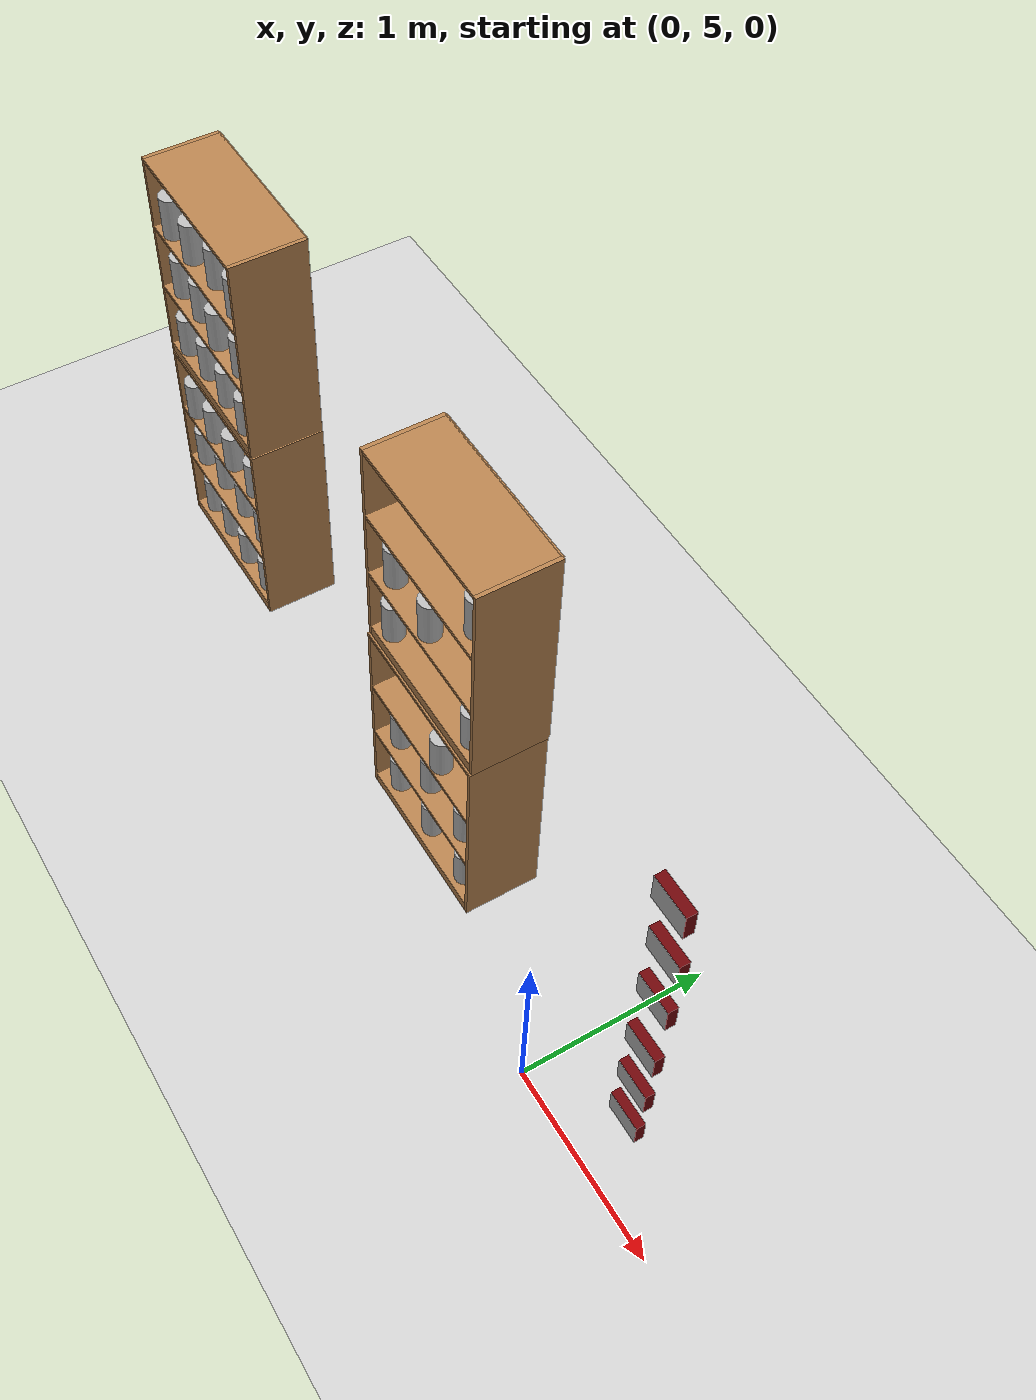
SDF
<sdf version="1.7">
 <world name="default">
  <model name="ground_plane">
   <static>1</static>
   <link name="link">
    <collision name="collision">
     <geometry><plane><normal>0 0 1</normal><size>100 100</size></plane></geometry>
     <surface><friction><ode><mu>100</mu><mu2>50</mu2></ode></friction></surface>
    </collision>
    <visual name="visual">
     <cast_shadows>0</cast_shadows>
     <geometry><plane><normal>0 0 1</normal><size>100 100</size></plane></geometry>
     <material>
      <script><uri>file://media/materials/scripts/gazebo.material</uri><name>Gazebo/Grey</name></script>
     </material>
    </visual>
   </link>
  </model>
  <model name="bookshelf_2_clone">
   <static>1</static>
   <link name="link">
    <inertial><mass>1</mass></inertial>
    <collision name="back">
     <pose>0 0.005 0.6 0 -0 0</pose>
     <geometry><box><size>0.9 0.01 1.2</size></box></geometry>
    </collision>
    <visual name="visual1">
     <pose>0 0.005 0.6 0 -0 0</pose>
     <geometry><box><size>0.9 0.01 1.2</size></box></geometry>
     <material>
      <script><uri>file://media/materials/scripts/gazebo.material</uri><name>Gazebo/Wood</name></script>
     </material>
    </visual>
    <collision name="left_side">
     <pose>0.45 -0.195 0.6 0 -0 0</pose>
     <geometry><box><size>0.02 0.4 1.2</size></box></geometry>
    </collision>
    <visual name="visual2">
     <pose>0.45 -0.195 0.6 0 -0 0</pose>
     <geometry><box><size>0.02 0.4 1.2</size></box></geometry>
     <material>
      <script><uri>file://media/materials/scripts/gazebo.material</uri><name>Gazebo/Wood</name></script>
     </material>
    </visual>
    <collision name="right_side">
     <pose>-0.45 -0.195 0.6 0 -0 0</pose>
     <geometry><box><size>0.02 0.4 1.2</size></box></geometry>
    </collision>
    <visual name="visual3">
     <pose>-0.45 -0.195 0.6 0 -0 0</pose>
     <geometry><box><size>0.02 0.4 1.2</size></box></geometry>
     <material>
      <script><uri>file://media/materials/scripts/gazebo.material</uri><name>Gazebo/Wood</name></script>
     </material>
    </visual>
    <collision name="bottom">
     <pose>0 -0.195 0.03 0 -0 0</pose>
     <geometry><box><size>0.88 0.4 0.06</size></box></geometry>
    </collision>
    <visual name="visual4">
     <pose>0 -0.195 0.03 0 -0 0</pose>
     <geometry><box><size>0.88 0.4 0.06</size></box></geometry>
     <material>
      <script><uri>file://media/materials/scripts/gazebo.material</uri><name>Gazebo/Wood</name></script>
     </material>
    </visual>
    <collision name="top">
     <pose>0 -0.195 1.19 0 -0 0</pose>
     <geometry><box><size>0.88 0.4 0.02</size></box></geometry>
    </collision>
    <visual name="visual5">
     <pose>0 -0.195 1.19 0 -0 0</pose>
     <geometry><box><size>0.88 0.4 0.02</size></box></geometry>
     <material>
      <script><uri>file://media/materials/scripts/gazebo.material</uri><name>Gazebo/Wood</name></script>
     </material>
    </visual>
    <collision name="low_shelf">
     <pose>0 -0.195 0.43 0 -0 0</pose>
     <geometry><box><size>0.88 0.4 0.02</size></box></geometry>
    </collision>
    <visual name="visual6">
     <pose>0 -0.195 0.43 0 -0 0</pose>
     <geometry><box><size>0.88 0.4 0.02</size></box></geometry>
     <material>
      <script><uri>file://media/materials/scripts/gazebo.material</uri><name>Gazebo/Wood</name></script>
     </material>
    </visual>
    <collision name="high_shelf">
     <pose>0 -0.195 0.8 0 -0 0</pose>
     <geometry><box><size>0.88 0.4 0.02</size></box></geometry>
    </collision>
    <visual name="visual7">
     <pose>0 -0.195 0.8 0 -0 0</pose>
     <geometry><box><size>0.88 0.4 0.02</size></box></geometry>
     <material>
      <script><uri>file://media/materials/scripts/gazebo.material</uri><name>Gazebo/Wood</name></script>
     </material>
    </visual>
   </link>
   <pose>-1.30264 5.59901 0 0 -0 0</pose>
  </model>
  <model name="bookshelf_2_clone_clone">
   <static>1</static>
   <link name="link">
    <inertial><mass>1</mass></inertial>
    <collision name="back">
     <pose>0 0.005 0.6 0 -0 0</pose>
     <geometry><box><size>0.9 0.01 1.2</size></box></geometry>
    </collision>
    <visual name="visual1">
     <pose>0 0.005 0.6 0 -0 0</pose>
     <geometry><box><size>0.9 0.01 1.2</size></box></geometry>
     <material>
      <script><uri>file://media/materials/scripts/gazebo.material</uri><name>Gazebo/Wood</name></script>
     </material>
    </visual>
    <collision name="left_side">
     <pose>0.45 -0.195 0.6 0 -0 0</pose>
     <geometry><box><size>0.02 0.4 1.2</size></box></geometry>
    </collision>
    <visual name="visual2">
     <pose>0.45 -0.195 0.6 0 -0 0</pose>
     <geometry><box><size>0.02 0.4 1.2</size></box></geometry>
     <material>
      <script><uri>file://media/materials/scripts/gazebo.material</uri><name>Gazebo/Wood</name></script>
     </material>
    </visual>
    <collision name="right_side">
     <pose>-0.45 -0.195 0.6 0 -0 0</pose>
     <geometry><box><size>0.02 0.4 1.2</size></box></geometry>
    </collision>
    <visual name="visual3">
     <pose>-0.45 -0.195 0.6 0 -0 0</pose>
     <geometry><box><size>0.02 0.4 1.2</size></box></geometry>
     <material>
      <script><uri>file://media/materials/scripts/gazebo.material</uri><name>Gazebo/Wood</name></script>
     </material>
    </visual>
    <collision name="bottom">
     <pose>0 -0.195 0.03 0 -0 0</pose>
     <geometry><box><size>0.88 0.4 0.06</size></box></geometry>
    </collision>
    <visual name="visual4">
     <pose>0 -0.195 0.03 0 -0 0</pose>
     <geometry><box><size>0.88 0.4 0.06</size></box></geometry>
     <material>
      <script><uri>file://media/materials/scripts/gazebo.material</uri><name>Gazebo/Wood</name></script>
     </material>
    </visual>
    <collision name="top">
     <pose>0 -0.195 1.19 0 -0 0</pose>
     <geometry><box><size>0.88 0.4 0.02</size></box></geometry>
    </collision>
    <visual name="visual5">
     <pose>0 -0.195 1.19 0 -0 0</pose>
     <geometry><box><size>0.88 0.4 0.02</size></box></geometry>
     <material>
      <script><uri>file://media/materials/scripts/gazebo.material</uri><name>Gazebo/Wood</name></script>
     </material>
    </visual>
    <collision name="low_shelf">
     <pose>0 -0.195 0.43 0 -0 0</pose>
     <geometry><box><size>0.88 0.4 0.02</size></box></geometry>
    </collision>
    <visual name="visual6">
     <pose>0 -0.195 0.43 0 -0 0</pose>
     <geometry><box><size>0.88 0.4 0.02</size></box></geometry>
     <material>
      <script><uri>file://media/materials/scripts/gazebo.material</uri><name>Gazebo/Wood</name></script>
     </material>
    </visual>
    <collision name="high_shelf">
     <pose>0 -0.195 0.8 0 -0 0</pose>
     <geometry><box><size>0.88 0.4 0.02</size></box></geometry>
    </collision>
    <visual name="visual7">
     <pose>0 -0.195 0.8 0 -0 0</pose>
     <geometry><box><size>0.88 0.4 0.02</size></box></geometry>
     <material>
      <script><uri>file://media/materials/scripts/gazebo.material</uri><name>Gazebo/Wood</name></script>
     </material>
    </visual>
   </link>
   <pose>-3.46853 5.62428 0 0 -0 0</pose>
  </model>
  <model name="bookshelf_3_clone">
   <static>1</static>
   <link name="link">
    <inertial><mass>1</mass></inertial>
    <collision name="back">
     <pose>0 0.005 0.6 0 -0 0</pose>
     <geometry><box><size>0.9 0.01 1.2</size></box></geometry>
    </collision>
    <visual name="visual1">
     <pose>0 0.005 0.6 0 -0 0</pose>
     <geometry><box><size>0.9 0.01 1.2</size></box></geometry>
     <material>
      <script><uri>file://media/materials/scripts/gazebo.material</uri><name>Gazebo/Wood</name></script>
     </material>
    </visual>
    <collision name="left_side">
     <pose>0.45 -0.195 0.6 0 -0 0</pose>
     <geometry><box><size>0.02 0.4 1.2</size></box></geometry>
    </collision>
    <visual name="visual2">
     <pose>0.45 -0.195 0.6 0 -0 0</pose>
     <geometry><box><size>0.02 0.4 1.2</size></box></geometry>
     <material>
      <script><uri>file://media/materials/scripts/gazebo.material</uri><name>Gazebo/Wood</name></script>
     </material>
    </visual>
    <collision name="right_side">
     <pose>-0.45 -0.195 0.6 0 -0 0</pose>
     <geometry><box><size>0.02 0.4 1.2</size></box></geometry>
    </collision>
    <visual name="visual3">
     <pose>-0.45 -0.195 0.6 0 -0 0</pose>
     <geometry><box><size>0.02 0.4 1.2</size></box></geometry>
     <material>
      <script><uri>file://media/materials/scripts/gazebo.material</uri><name>Gazebo/Wood</name></script>
     </material>
    </visual>
    <collision name="bottom">
     <pose>0 -0.195 0.03 0 -0 0</pose>
     <geometry><box><size>0.88 0.4 0.06</size></box></geometry>
    </collision>
    <visual name="visual4">
     <pose>0 -0.195 0.03 0 -0 0</pose>
     <geometry><box><size>0.88 0.4 0.06</size></box></geometry>
     <material>
      <script><uri>file://media/materials/scripts/gazebo.material</uri><name>Gazebo/Wood</name></script>
     </material>
    </visual>
    <collision name="top">
     <pose>0 -0.195 1.19 0 -0 0</pose>
     <geometry><box><size>0.88 0.4 0.02</size></box></geometry>
    </collision>
    <visual name="visual5">
     <pose>0 -0.195 1.19 0 -0 0</pose>
     <geometry><box><size>0.88 0.4 0.02</size></box></geometry>
     <material>
      <script><uri>file://media/materials/scripts/gazebo.material</uri><name>Gazebo/Wood</name></script>
     </material>
    </visual>
    <collision name="low_shelf">
     <pose>0 -0.195 0.43 0 -0 0</pose>
     <geometry><box><size>0.88 0.4 0.02</size></box></geometry>
    </collision>
    <visual name="visual6">
     <pose>0 -0.195 0.43 0 -0 0</pose>
     <geometry><box><size>0.88 0.4 0.02</size></box></geometry>
     <material>
      <script><uri>file://media/materials/scripts/gazebo.material</uri><name>Gazebo/Wood</name></script>
     </material>
    </visual>
    <collision name="high_shelf">
     <pose>0 -0.195 0.8 0 -0 0</pose>
     <geometry><box><size>0.88 0.4 0.02</size></box></geometry>
    </collision>
    <visual name="visual7">
     <pose>0 -0.195 0.8 0 -0 0</pose>
     <geometry><box><size>0.88 0.4 0.02</size></box></geometry>
     <material>
      <script><uri>file://media/materials/scripts/gazebo.material</uri><name>Gazebo/Wood</name></script>
     </material>
    </visual>
   </link>
   <pose>-1.30336 5.6079 1.20481 0 -0 0</pose>
  </model>
  <model name="bookshelf_3_clone_clone">
   <static>1</static>
   <link name="link">
    <inertial><mass>1</mass></inertial>
    <collision name="back">
     <pose>0 0.005 0.6 0 -0 0</pose>
     <geometry><box><size>0.9 0.01 1.2</size></box></geometry>
    </collision>
    <visual name="visual1">
     <pose>0 0.005 0.6 0 -0 0</pose>
     <geometry><box><size>0.9 0.01 1.2</size></box></geometry>
     <material>
      <script><uri>file://media/materials/scripts/gazebo.material</uri><name>Gazebo/Wood</name></script>
     </material>
    </visual>
    <collision name="left_side">
     <pose>0.45 -0.195 0.6 0 -0 0</pose>
     <geometry><box><size>0.02 0.4 1.2</size></box></geometry>
    </collision>
    <visual name="visual2">
     <pose>0.45 -0.195 0.6 0 -0 0</pose>
     <geometry><box><size>0.02 0.4 1.2</size></box></geometry>
     <material>
      <script><uri>file://media/materials/scripts/gazebo.material</uri><name>Gazebo/Wood</name></script>
     </material>
    </visual>
    <collision name="right_side">
     <pose>-0.45 -0.195 0.6 0 -0 0</pose>
     <geometry><box><size>0.02 0.4 1.2</size></box></geometry>
    </collision>
    <visual name="visual3">
     <pose>-0.45 -0.195 0.6 0 -0 0</pose>
     <geometry><box><size>0.02 0.4 1.2</size></box></geometry>
     <material>
      <script><uri>file://media/materials/scripts/gazebo.material</uri><name>Gazebo/Wood</name></script>
     </material>
    </visual>
    <collision name="bottom">
     <pose>0 -0.195 0.03 0 -0 0</pose>
     <geometry><box><size>0.88 0.4 0.06</size></box></geometry>
    </collision>
    <visual name="visual4">
     <pose>0 -0.195 0.03 0 -0 0</pose>
     <geometry><box><size>0.88 0.4 0.06</size></box></geometry>
     <material>
      <script><uri>file://media/materials/scripts/gazebo.material</uri><name>Gazebo/Wood</name></script>
     </material>
    </visual>
    <collision name="top">
     <pose>0 -0.195 1.19 0 -0 0</pose>
     <geometry><box><size>0.88 0.4 0.02</size></box></geometry>
    </collision>
    <visual name="visual5">
     <pose>0 -0.195 1.19 0 -0 0</pose>
     <geometry><box><size>0.88 0.4 0.02</size></box></geometry>
     <material>
      <script><uri>file://media/materials/scripts/gazebo.material</uri><name>Gazebo/Wood</name></script>
     </material>
    </visual>
    <collision name="low_shelf">
     <pose>0 -0.195 0.43 0 -0 0</pose>
     <geometry><box><size>0.88 0.4 0.02</size></box></geometry>
    </collision>
    <visual name="visual6">
     <pose>0 -0.195 0.43 0 -0 0</pose>
     <geometry><box><size>0.88 0.4 0.02</size></box></geometry>
     <material>
      <script><uri>file://media/materials/scripts/gazebo.material</uri><name>Gazebo/Wood</name></script>
     </material>
    </visual>
    <collision name="high_shelf">
     <pose>0 -0.195 0.8 0 -0 0</pose>
     <geometry><box><size>0.88 0.4 0.02</size></box></geometry>
    </collision>
    <visual name="visual7">
     <pose>0 -0.195 0.8 0 -0 0</pose>
     <geometry><box><size>0.88 0.4 0.02</size></box></geometry>
     <material>
      <script><uri>file://media/materials/scripts/gazebo.material</uri><name>Gazebo/Wood</name></script>
     </material>
    </visual>
   </link>
   <pose>-3.47373 5.62521 1.20481 0 -0 0</pose>
  </model>
  <model name="beer">
   <link name="link">
    <pose>0 0 0.115 0 -0 0</pose>
    <inertial>
     <mass>0.39</mass>
     <inertia><ixx>0.00058</ixx><ixy>0</ixy><ixz>0</ixz><iyy>0.00058</iyy><iyz>0</iyz><izz>0.00019</izz></inertia>
    </inertial>
    <collision name="collision">
     <geometry><cylinder><radius>0.055</radius><length>0.23</length></cylinder></geometry>
    </collision>
    <visual name="visual">
     <geometry><cylinder><radius>0.055</radius><length>0.23</length></cylinder></geometry>
     <material>
      <script>
       <uri>model://beer/materials/scripts</uri>
       <uri>model://beer/materials/textures</uri>
       <name>Beer/Diffuse</name>
      </script>
     </material>
    </visual>
   </link>
   <pose>-3.82317 5.30785 0.060005 2.3e-05 9e-05 0.032991</pose>
  </model>
  <model name="beer_0">
   <link name="link">
    <pose>0 0 0.115 0 -0 0</pose>
    <inertial>
     <mass>0.39</mass>
     <inertia><ixx>0.00058</ixx><ixy>0</ixy><ixz>0</ixz><iyy>0.00058</iyy><iyz>0</iyz><izz>0.00019</izz></inertia>
    </inertial>
    <collision name="collision">
     <geometry><cylinder><radius>0.055</radius><length>0.23</length></cylinder></geometry>
    </collision>
    <visual name="visual">
     <geometry><cylinder><radius>0.055</radius><length>0.23</length></cylinder></geometry>
     <material>
      <script>
       <uri>model://beer/materials/scripts</uri>
       <uri>model://beer/materials/textures</uri>
       <name>Beer/Diffuse</name>
      </script>
     </material>
    </visual>
   </link>
   <pose>-3.60613 5.31064 0.060002 2.7e-05 1.5e-05 0.067726</pose>
  </model>
  <model name="beer_1">
   <link name="link">
    <pose>0 0 0.115 0 -0 0</pose>
    <inertial>
     <mass>0.39</mass>
     <inertia><ixx>0.00058</ixx><ixy>0</ixy><ixz>0</ixz><iyy>0.00058</iyy><iyz>0</iyz><izz>0.00019</izz></inertia>
    </inertial>
    <collision name="collision">
     <geometry><cylinder><radius>0.055</radius><length>0.23</length></cylinder></geometry>
    </collision>
    <visual name="visual">
     <geometry><cylinder><radius>0.055</radius><length>0.23</length></cylinder></geometry>
     <material>
      <script>
       <uri>model://beer/materials/scripts</uri>
       <uri>model://beer/materials/textures</uri>
       <name>Beer/Diffuse</name>
      </script>
     </material>
    </visual>
   </link>
   <pose>-3.3755 5.29922 0.059992 -6e-06 2e-05 0.03346</pose>
  </model>
  <model name="beer_2">
   <link name="link">
    <pose>0 0 0.115 0 -0 0</pose>
    <inertial>
     <mass>0.39</mass>
     <inertia><ixx>0.00058</ixx><ixy>0</ixy><ixz>0</ixz><iyy>0.00058</iyy><iyz>0</iyz><izz>0.00019</izz></inertia>
    </inertial>
    <collision name="collision">
     <geometry><cylinder><radius>0.055</radius><length>0.23</length></cylinder></geometry>
    </collision>
    <visual name="visual">
     <geometry><cylinder><radius>0.055</radius><length>0.23</length></cylinder></geometry>
     <material>
      <script>
       <uri>model://beer/materials/scripts</uri>
       <uri>model://beer/materials/textures</uri>
       <name>Beer/Diffuse</name>
      </script>
     </material>
    </visual>
   </link>
   <pose>-3.14469 5.30316 0.060001 2.5e-05 7e-06 0.008403</pose>
  </model>
  <model name="beer_3_clone">
   <link name="link">
    <pose>0 0 0.115 0 -0 0</pose>
    <inertial>
     <mass>0.39</mass>
     <inertia><ixx>0.00058</ixx><ixy>0</ixy><ixz>0</ixz><iyy>0.00058</iyy><iyz>0</iyz><izz>0.00019</izz></inertia>
    </inertial>
    <collision name="collision">
     <geometry><cylinder><radius>0.055</radius><length>0.23</length></cylinder></geometry>
    </collision>
    <visual name="visual">
     <geometry><cylinder><radius>0.055</radius><length>0.23</length></cylinder></geometry>
     <material>
      <script>
       <uri>model://beer/materials/scripts</uri>
       <uri>model://beer/materials/textures</uri>
       <name>Beer/Diffuse</name>
      </script>
     </material>
    </visual>
   </link>
   <pose>-3.60911 5.314 0.440001 -1e-06 2.6e-05 0.051575</pose>
  </model>
  <model name="beer_3_clone_0">
   <link name="link">
    <pose>0 0 0.115 0 -0 0</pose>
    <inertial>
     <mass>0.39</mass>
     <inertia><ixx>0.00058</ixx><ixy>0</ixy><ixz>0</ixz><iyy>0.00058</iyy><iyz>0</iyz><izz>0.00019</izz></inertia>
    </inertial>
    <collision name="collision">
     <geometry><cylinder><radius>0.055</radius><length>0.23</length></cylinder></geometry>
    </collision>
    <visual name="visual">
     <geometry><cylinder><radius>0.055</radius><length>0.23</length></cylinder></geometry>
     <material>
      <script>
       <uri>model://beer/materials/scripts</uri>
       <uri>model://beer/materials/textures</uri>
       <name>Beer/Diffuse</name>
      </script>
     </material>
    </visual>
   </link>
   <pose>-3.37403 5.31588 0.440001 -1e-06 2.6e-05 0.031481</pose>
  </model>
  <model name="beer_3_clone_1">
   <link name="link">
    <pose>0 0 0.115 0 -0 0</pose>
    <inertial>
     <mass>0.39</mass>
     <inertia><ixx>0.00058</ixx><ixy>0</ixy><ixz>0</ixz><iyy>0.00058</iyy><iyz>0</iyz><izz>0.00019</izz></inertia>
    </inertial>
    <collision name="collision">
     <geometry><cylinder><radius>0.055</radius><length>0.23</length></cylinder></geometry>
    </collision>
    <visual name="visual">
     <geometry><cylinder><radius>0.055</radius><length>0.23</length></cylinder></geometry>
     <material>
      <script>
       <uri>model://beer/materials/scripts</uri>
       <uri>model://beer/materials/textures</uri>
       <name>Beer/Diffuse</name>
      </script>
     </material>
    </visual>
   </link>
   <pose>-3.1502 5.31608 0.439991 6e-06 -1.3e-05 0.013627</pose>
  </model>
  <model name="beer_1_clone">
   <link name="link">
    <pose>0 0 0.115 0 -0 0</pose>
    <inertial>
     <mass>0.39</mass>
     <inertia><ixx>0.00058</ixx><ixy>0</ixy><ixz>0</ixz><iyy>0.00058</iyy><iyz>0</iyz><izz>0.00019</izz></inertia>
    </inertial>
    <collision name="collision">
     <geometry><cylinder><radius>0.055</radius><length>0.23</length></cylinder></geometry>
    </collision>
    <visual name="visual">
     <geometry><cylinder><radius>0.055</radius><length>0.23</length></cylinder></geometry>
     <material>
      <script>
       <uri>model://beer/materials/scripts</uri>
       <uri>model://beer/materials/textures</uri>
       <name>Beer/Diffuse</name>
      </script>
     </material>
    </visual>
   </link>
   <pose>-1.63129 5.28745 0.060001 -1e-06 2.6e-05 0.027832</pose>
  </model>
  <model name="beer_1_clone_0">
   <link name="link">
    <pose>0 0 0.115 0 -0 0</pose>
    <inertial>
     <mass>0.39</mass>
     <inertia><ixx>0.00058</ixx><ixy>0</ixy><ixz>0</ixz><iyy>0.00058</iyy><iyz>0</iyz><izz>0.00019</izz></inertia>
    </inertial>
    <collision name="collision">
     <geometry><cylinder><radius>0.055</radius><length>0.23</length></cylinder></geometry>
    </collision>
    <visual name="visual">
     <geometry><cylinder><radius>0.055</radius><length>0.23</length></cylinder></geometry>
     <material>
      <script>
       <uri>model://beer/materials/scripts</uri>
       <uri>model://beer/materials/textures</uri>
       <name>Beer/Diffuse</name>
      </script>
     </material>
    </visual>
   </link>
   <pose>-1.32045 5.28937 0.060001 -9e-06 2.5e-05 0.03854</pose>
  </model>
  <model name="beer_1_clone_1">
   <link name="link">
    <pose>0 0 0.115 0 -0 0</pose>
    <inertial>
     <mass>0.39</mass>
     <inertia><ixx>0.00058</ixx><ixy>0</ixy><ixz>0</ixz><iyy>0.00058</iyy><iyz>0</iyz><izz>0.00019</izz></inertia>
    </inertial>
    <collision name="collision">
     <geometry><cylinder><radius>0.055</radius><length>0.23</length></cylinder></geometry>
    </collision>
    <visual name="visual">
     <geometry><cylinder><radius>0.055</radius><length>0.23</length></cylinder></geometry>
     <material>
      <script>
       <uri>model://beer/materials/scripts</uri>
       <uri>model://beer/materials/textures</uri>
       <name>Beer/Diffuse</name>
      </script>
     </material>
    </visual>
   </link>
   <pose>-1.00015 5.28661 0.060001 2.7e-05 5e-06 0.010711</pose>
  </model>
  <model name="beer_3_clone_1_clone">
   <link name="link">
    <pose>0 0 0.115 0 -0 0</pose>
    <inertial>
     <mass>0.39</mass>
     <inertia><ixx>0.00058</ixx><ixy>0</ixy><ixz>0</ixz><iyy>0.00058</iyy><iyz>0</iyz><izz>0.00019</izz></inertia>
    </inertial>
    <collision name="collision">
     <geometry><cylinder><radius>0.055</radius><length>0.23</length></cylinder></geometry>
    </collision>
    <visual name="visual">
     <geometry><cylinder><radius>0.055</radius><length>0.23</length></cylinder></geometry>
     <material>
      <script>
       <uri>model://beer/materials/scripts</uri>
       <uri>model://beer/materials/textures</uri>
       <name>Beer/Diffuse</name>
      </script>
     </material>
    </visual>
   </link>
   <pose>-1.62515 5.29266 0.439992 2.8e-05 3e-06 0.031768</pose>
  </model>
  <model name="beer_3_clone_1_clone_0">
   <link name="link">
    <pose>0 0 0.115 0 -0 0</pose>
    <inertial>
     <mass>0.39</mass>
     <inertia><ixx>0.00058</ixx><ixy>0</ixy><ixz>0</ixz><iyy>0.00058</iyy><iyz>0</iyz><izz>0.00019</izz></inertia>
    </inertial>
    <collision name="collision">
     <geometry><cylinder><radius>0.055</radius><length>0.23</length></cylinder></geometry>
    </collision>
    <visual name="visual">
     <geometry><cylinder><radius>0.055</radius><length>0.23</length></cylinder></geometry>
     <material>
      <script>
       <uri>model://beer/materials/scripts</uri>
       <uri>model://beer/materials/textures</uri>
       <name>Beer/Diffuse</name>
      </script>
     </material>
    </visual>
   </link>
   <pose>-1.32678 5.29035 0.440001 -2e-06 2.8e-05 0.041613</pose>
  </model>
  <model name="beer_3_clone_1_clone_1">
   <link name="link">
    <pose>0 0 0.115 0 -0 0</pose>
    <inertial>
     <mass>0.39</mass>
     <inertia><ixx>0.00058</ixx><ixy>0</ixy><ixz>0</ixz><iyy>0.00058</iyy><iyz>0</iyz><izz>0.00019</izz></inertia>
    </inertial>
    <collision name="collision">
     <geometry><cylinder><radius>0.055</radius><length>0.23</length></cylinder></geometry>
    </collision>
    <visual name="visual">
     <geometry><cylinder><radius>0.055</radius><length>0.23</length></cylinder></geometry>
     <material>
      <script>
       <uri>model://beer/materials/scripts</uri>
       <uri>model://beer/materials/textures</uri>
       <name>Beer/Diffuse</name>
      </script>
     </material>
    </visual>
   </link>
   <pose>-1.01355 5.28799 0.43999 -3e-06 -6e-06 0.004821</pose>
  </model>
  <model name="biscuit_box">
   <link name="link">
    <pose>0 0 0.025 0 -0 0</pose>
    <visual name="visual">
     <geometry><box><size>0.2 0.15 0.05</size></box></geometry>
     <material>
      <ambient>0.423 0.019 0.035 1</ambient>
      <diffuse>0.423 0.019 0.035 1</diffuse>
      <specular>0.01 0.01 0.01 1</specular>
      <emissive>0 0 0 1</emissive>
     </material>
    </visual>
    <collision name="collision"><geometry><box><size>0.1 0.1 0.15</size></box></geometry></collision>
   </link>
   <link name="link_1">
    <pose>0 0 0.05 0 -0 0</pose>
    <visual name="visual">
     <geometry><box><size>0.2 0.15 0.001</size></box></geometry>
     <material>
      <script>
       <uri>model://biscuit_box/materials/scripts</uri>
       <uri>model://biscuit_box/materials/textures</uri>
       <name>biscuit_pat</name>
      </script>
     </material>
    </visual>
    <collision name="collision"><geometry><box><size>0.1 0.1 0.15</size></box></geometry></collision>
   </link>
   <static>1</static>
   <pose>0.456028 5.28742 0.137981 1.59184 -0 0</pose>
  </model>
  <model name="beer_3_clone_clone_0">
   <link name="link">
    <pose>0 0 0.115 0 -0 0</pose>
    <inertial>
     <mass>0.39</mass>
     <inertia><ixx>0.00058</ixx><ixy>0</ixy><ixz>0</ixz><iyy>0.00058</iyy><iyz>0</iyz><izz>0.00019</izz></inertia>
    </inertial>
    <collision name="collision">
     <geometry><cylinder><radius>0.055</radius><length>0.23</length></cylinder></geometry>
    </collision>
    <visual name="visual">
     <geometry><cylinder><radius>0.055</radius><length>0.23</length></cylinder></geometry>
     <material>
      <script>
       <uri>model://beer/materials/scripts</uri>
       <uri>model://beer/materials/textures</uri>
       <name>Beer/Diffuse</name>
      </script>
     </material>
    </visual>
   </link>
   <pose>-3.8305 5.29922 0.440006 2.7e-05 0.000107 0.03136</pose>
  </model>
  <model name="beer_3_clone_clone_clone">
   <link name="link">
    <pose>0 0 0.115 0 -0 0</pose>
    <inertial>
     <mass>0.39</mass>
     <inertia><ixx>0.00058</ixx><ixy>0</ixy><ixz>0</ixz><iyy>0.00058</iyy><iyz>0</iyz><izz>0.00019</izz></inertia>
    </inertial>
    <collision name="collision">
     <geometry><cylinder><radius>0.055</radius><length>0.23</length></cylinder></geometry>
    </collision>
    <visual name="visual">
     <geometry><cylinder><radius>0.055</radius><length>0.23</length></cylinder></geometry>
     <material>
      <script>
       <uri>model://beer/materials/scripts</uri>
       <uri>model://beer/materials/textures</uri>
       <name>Beer/Diffuse</name>
      </script>
     </material>
    </visual>
   </link>
   <pose>-3.60938 5.2856 0.810003 5.6e-05 -8e-06 0.03343</pose>
  </model>
  <model name="beer_3_clone_clone_clone_clone">
   <link name="link">
    <pose>0 0 0.115 0 -0 0</pose>
    <inertial>
     <mass>0.39</mass>
     <inertia><ixx>0.00058</ixx><ixy>0</ixy><ixz>0</ixz><iyy>0.00058</iyy><iyz>0</iyz><izz>0.00019</izz></inertia>
    </inertial>
    <collision name="collision">
     <geometry><cylinder><radius>0.055</radius><length>0.23</length></cylinder></geometry>
    </collision>
    <visual name="visual">
     <geometry><cylinder><radius>0.055</radius><length>0.23</length></cylinder></geometry>
     <material>
      <script>
       <uri>model://beer/materials/scripts</uri>
       <uri>model://beer/materials/textures</uri>
       <name>Beer/Diffuse</name>
      </script>
     </material>
    </visual>
   </link>
   <pose>-3.37632 5.28052 0.809994 3.1e-05 7e-05 0.023154</pose>
  </model>
  <model name="beer_3_clone_clone_clone_clone_0">
   <link name="link">
    <pose>0 0 0.115 0 -0 0</pose>
    <inertial>
     <mass>0.39</mass>
     <inertia><ixx>0.00058</ixx><ixy>0</ixy><ixz>0</ixz><iyy>0.00058</iyy><iyz>0</iyz><izz>0.00019</izz></inertia>
    </inertial>
    <collision name="collision">
     <geometry><cylinder><radius>0.055</radius><length>0.23</length></cylinder></geometry>
    </collision>
    <visual name="visual">
     <geometry><cylinder><radius>0.055</radius><length>0.23</length></cylinder></geometry>
     <material>
      <script>
       <uri>model://beer/materials/scripts</uri>
       <uri>model://beer/materials/textures</uri>
       <name>Beer/Diffuse</name>
      </script>
     </material>
    </visual>
   </link>
   <pose>-3.1488 5.29387 0.809991 9e-06 1e-06 0.025155</pose>
  </model>
  <model name="beer_3_clone_clone_clone_clone_2">
   <link name="link">
    <pose>0 0 0.115 0 -0 0</pose>
    <inertial>
     <mass>0.39</mass>
     <inertia><ixx>0.00058</ixx><ixy>0</ixy><ixz>0</ixz><iyy>0.00058</iyy><iyz>0</iyz><izz>0.00019</izz></inertia>
    </inertial>
    <collision name="collision">
     <geometry><cylinder><radius>0.055</radius><length>0.23</length></cylinder></geometry>
    </collision>
    <visual name="visual">
     <geometry><cylinder><radius>0.055</radius><length>0.23</length></cylinder></geometry>
     <material>
      <script>
       <uri>model://beer/materials/scripts</uri>
       <uri>model://beer/materials/textures</uri>
       <name>Beer/Diffuse</name>
      </script>
     </material>
    </visual>
   </link>
   <pose>-3.82307 5.28089 0.809994 2.2e-05 5.6e-05 0.024936</pose>
  </model>
  <model name="beer_3_clone_clone_clone_clone_1_clone">
   <link name="link">
    <pose>0 0 0.115 0 -0 0</pose>
    <inertial>
     <mass>0.39</mass>
     <inertia><ixx>0.00058</ixx><ixy>0</ixy><ixz>0</ixz><iyy>0.00058</iyy><iyz>0</iyz><izz>0.00019</izz></inertia>
    </inertial>
    <collision name="collision">
     <geometry><cylinder><radius>0.055</radius><length>0.23</length></cylinder></geometry>
    </collision>
    <visual name="visual">
     <geometry><cylinder><radius>0.055</radius><length>0.23</length></cylinder></geometry>
     <material>
      <script>
       <uri>model://beer/materials/scripts</uri>
       <uri>model://beer/materials/textures</uri>
       <name>Beer/Diffuse</name>
      </script>
     </material>
    </visual>
   </link>
   <pose>-3.60066 5.30013 1.26481 2.1e-05 2e-06 0.055151</pose>
  </model>
  <model name="beer_3_clone_clone_clone_clone_1_clone_0">
   <link name="link">
    <pose>0 0 0.115 0 -0 0</pose>
    <inertial>
     <mass>0.39</mass>
     <inertia><ixx>0.00058</ixx><ixy>0</ixy><ixz>0</ixz><iyy>0.00058</iyy><iyz>0</iyz><izz>0.00019</izz></inertia>
    </inertial>
    <collision name="collision">
     <geometry><cylinder><radius>0.055</radius><length>0.23</length></cylinder></geometry>
    </collision>
    <visual name="visual">
     <geometry><cylinder><radius>0.055</radius><length>0.23</length></cylinder></geometry>
     <material>
      <script>
       <uri>model://beer/materials/scripts</uri>
       <uri>model://beer/materials/textures</uri>
       <name>Beer/Diffuse</name>
      </script>
     </material>
    </visual>
   </link>
   <pose>-3.37707 5.2947 1.26481 -2.7e-05 -2.9e-05 0.040474</pose>
  </model>
  <model name="beer_3_clone_clone_clone_clone_1_clone_1">
   <link name="link">
    <pose>0 0 0.115 0 -0 0</pose>
    <inertial>
     <mass>0.39</mass>
     <inertia><ixx>0.00058</ixx><ixy>0</ixy><ixz>0</ixz><iyy>0.00058</iyy><iyz>0</iyz><izz>0.00019</izz></inertia>
    </inertial>
    <collision name="collision">
     <geometry><cylinder><radius>0.055</radius><length>0.23</length></cylinder></geometry>
    </collision>
    <visual name="visual">
     <geometry><cylinder><radius>0.055</radius><length>0.23</length></cylinder></geometry>
     <material>
      <script>
       <uri>model://beer/materials/scripts</uri>
       <uri>model://beer/materials/textures</uri>
       <name>Beer/Diffuse</name>
      </script>
     </material>
    </visual>
   </link>
   <pose>-3.15299 5.28934 1.26481 3.7e-05 -1.1e-05 0.027533</pose>
  </model>
  <model name="beer_3_clone_clone_clone_clone_1_clone_clone">
   <link name="link">
    <pose>0 0 0.115 0 -0 0</pose>
    <inertial>
     <mass>0.39</mass>
     <inertia><ixx>0.00058</ixx><ixy>0</ixy><ixz>0</ixz><iyy>0.00058</iyy><iyz>0</iyz><izz>0.00019</izz></inertia>
    </inertial>
    <collision name="collision">
     <geometry><cylinder><radius>0.055</radius><length>0.23</length></cylinder></geometry>
    </collision>
    <visual name="visual">
     <geometry><cylinder><radius>0.055</radius><length>0.23</length></cylinder></geometry>
     <material>
      <script>
       <uri>model://beer/materials/scripts</uri>
       <uri>model://beer/materials/textures</uri>
       <name>Beer/Diffuse</name>
      </script>
     </material>
    </visual>
   </link>
   <pose>-3.81528 5.29073 1.2648 -1e-06 2.6e-05 0.033418</pose>
  </model>
  <model name="beer_3_clone_clone_clone_clone_1_clone_2">
   <link name="link">
    <pose>0 0 0.115 0 -0 0</pose>
    <inertial>
     <mass>0.39</mass>
     <inertia><ixx>0.00058</ixx><ixy>0</ixy><ixz>0</ixz><iyy>0.00058</iyy><iyz>0</iyz><izz>0.00019</izz></inertia>
    </inertial>
    <collision name="collision">
     <geometry><cylinder><radius>0.055</radius><length>0.23</length></cylinder></geometry>
    </collision>
    <visual name="visual">
     <geometry><cylinder><radius>0.055</radius><length>0.23</length></cylinder></geometry>
     <material>
      <script>
       <uri>model://beer/materials/scripts</uri>
       <uri>model://beer/materials/textures</uri>
       <name>Beer/Diffuse</name>
      </script>
     </material>
    </visual>
   </link>
   <pose>-3.60666 5.30828 1.64481 -1.2e-05 1e-05 0.050208</pose>
  </model>
  <model name="beer_3_clone_clone_clone_clone_1_clone_3">
   <link name="link">
    <pose>0 0 0.115 0 -0 0</pose>
    <inertial>
     <mass>0.39</mass>
     <inertia><ixx>0.00058</ixx><ixy>0</ixy><ixz>0</ixz><iyy>0.00058</iyy><iyz>0</iyz><izz>0.00019</izz></inertia>
    </inertial>
    <collision name="collision">
     <geometry><cylinder><radius>0.055</radius><length>0.23</length></cylinder></geometry>
    </collision>
    <visual name="visual">
     <geometry><cylinder><radius>0.055</radius><length>0.23</length></cylinder></geometry>
     <material>
      <script>
       <uri>model://beer/materials/scripts</uri>
       <uri>model://beer/materials/textures</uri>
       <name>Beer/Diffuse</name>
      </script>
     </material>
    </visual>
   </link>
   <pose>-3.3847 5.28833 1.64481 3.8e-05 -4e-06 0.036983</pose>
  </model>
  <model name="beer_3_clone_clone_clone_clone_1_clone_4">
   <link name="link">
    <pose>0 0 0.115 0 -0 0</pose>
    <inertial>
     <mass>0.39</mass>
     <inertia><ixx>0.00058</ixx><ixy>0</ixy><ixz>0</ixz><iyy>0.00058</iyy><iyz>0</iyz><izz>0.00019</izz></inertia>
    </inertial>
    <collision name="collision">
     <geometry><cylinder><radius>0.055</radius><length>0.23</length></cylinder></geometry>
    </collision>
    <visual name="visual">
     <geometry><cylinder><radius>0.055</radius><length>0.23</length></cylinder></geometry>
     <material>
      <script>
       <uri>model://beer/materials/scripts</uri>
       <uri>model://beer/materials/textures</uri>
       <name>Beer/Diffuse</name>
      </script>
     </material>
    </visual>
   </link>
   <pose>-3.15408 5.30205 1.6448 4e-06 -9e-06 0.027094</pose>
  </model>
  <model name="beer_3_clone_clone_clone_clone_1_clone_2_clone_0">
   <link name="link">
    <pose>0 0 0.115 0 -0 0</pose>
    <inertial>
     <mass>0.39</mass>
     <inertia><ixx>0.00058</ixx><ixy>0</ixy><ixz>0</ixz><iyy>0.00058</iyy><iyz>0</iyz><izz>0.00019</izz></inertia>
    </inertial>
    <collision name="collision">
     <geometry><cylinder><radius>0.055</radius><length>0.23</length></cylinder></geometry>
    </collision>
    <visual name="visual">
     <geometry><cylinder><radius>0.055</radius><length>0.23</length></cylinder></geometry>
     <material>
      <script>
       <uri>model://beer/materials/scripts</uri>
       <uri>model://beer/materials/textures</uri>
       <name>Beer/Diffuse</name>
      </script>
     </material>
    </visual>
   </link>
   <pose>-3.81197 5.30251 1.6448 1e-06 -2.7e-05 0.03642</pose>
  </model>
  <model name="beer_3_clone_clone_clone_clone_1_clone_2_clone_clone">
   <link name="link">
    <pose>0 0 0.115 0 -0 0</pose>
    <inertial>
     <mass>0.39</mass>
     <inertia><ixx>0.00058</ixx><ixy>0</ixy><ixz>0</ixz><iyy>0.00058</iyy><iyz>0</iyz><izz>0.00019</izz></inertia>
    </inertial>
    <collision name="collision">
     <geometry><cylinder><radius>0.055</radius><length>0.23</length></cylinder></geometry>
    </collision>
    <visual name="visual">
     <geometry><cylinder><radius>0.055</radius><length>0.23</length></cylinder></geometry>
     <material>
      <script>
       <uri>model://beer/materials/scripts</uri>
       <uri>model://beer/materials/textures</uri>
       <name>Beer/Diffuse</name>
      </script>
     </material>
    </visual>
   </link>
   <pose>-3.59693 5.29694 2.01481 2.4e-05 1.3e-05 0.04919</pose>
  </model>
  <model name="beer_3_clone_clone_clone_clone_1_clone_2_clone_clone_clone">
   <link name="link">
    <pose>0 0 0.115 0 -0 0</pose>
    <inertial>
     <mass>0.39</mass>
     <inertia><ixx>0.00058</ixx><ixy>0</ixy><ixz>0</ixz><iyy>0.00058</iyy><iyz>0</iyz><izz>0.00019</izz></inertia>
    </inertial>
    <collision name="collision">
     <geometry><cylinder><radius>0.055</radius><length>0.23</length></cylinder></geometry>
    </collision>
    <visual name="visual">
     <geometry><cylinder><radius>0.055</radius><length>0.23</length></cylinder></geometry>
     <material>
      <script>
       <uri>model://beer/materials/scripts</uri>
       <uri>model://beer/materials/textures</uri>
       <name>Beer/Diffuse</name>
      </script>
     </material>
    </visual>
   </link>
   <pose>-3.81003 5.2926 2.0148 2e-05 -0 0.036405</pose>
  </model>
  <model name="beer_3_clone_clone_clone_clone_1_clone_2_clone_clone_clone_0">
   <link name="link">
    <pose>0 0 0.115 0 -0 0</pose>
    <inertial>
     <mass>0.39</mass>
     <inertia><ixx>0.00058</ixx><ixy>0</ixy><ixz>0</ixz><iyy>0.00058</iyy><iyz>0</iyz><izz>0.00019</izz></inertia>
    </inertial>
    <collision name="collision">
     <geometry><cylinder><radius>0.055</radius><length>0.23</length></cylinder></geometry>
    </collision>
    <visual name="visual">
     <geometry><cylinder><radius>0.055</radius><length>0.23</length></cylinder></geometry>
     <material>
      <script>
       <uri>model://beer/materials/scripts</uri>
       <uri>model://beer/materials/textures</uri>
       <name>Beer/Diffuse</name>
      </script>
     </material>
    </visual>
   </link>
   <pose>-3.38133 5.32163 2.01481 1.1e-05 -1.5e-05 0.034841</pose>
  </model>
  <model name="beer_3_clone_clone_clone_clone_1_clone_2_clone_clone_clone_1">
   <link name="link">
    <pose>0 0 0.115 0 -0 0</pose>
    <inertial>
     <mass>0.39</mass>
     <inertia><ixx>0.00058</ixx><ixy>0</ixy><ixz>0</ixz><iyy>0.00058</iyy><iyz>0</iyz><izz>0.00019</izz></inertia>
    </inertial>
    <collision name="collision">
     <geometry><cylinder><radius>0.055</radius><length>0.23</length></cylinder></geometry>
    </collision>
    <visual name="visual">
     <geometry><cylinder><radius>0.055</radius><length>0.23</length></cylinder></geometry>
     <material>
      <script>
       <uri>model://beer/materials/scripts</uri>
       <uri>model://beer/materials/textures</uri>
       <name>Beer/Diffuse</name>
      </script>
     </material>
    </visual>
   </link>
   <pose>-3.14916 5.30942 2.0148 1.7e-05 -1.7e-05 0.024534</pose>
  </model>
  <model name="beer_3_clone_clone_clone_clone_clone_1">
   <link name="link">
    <pose>0 0 0.115 0 -0 0</pose>
    <inertial>
     <mass>0.39</mass>
     <inertia><ixx>0.00058</ixx><ixy>0</ixy><ixz>0</ixz><iyy>0.00058</iyy><iyz>0</iyz><izz>0.00019</izz></inertia>
    </inertial>
    <collision name="collision">
     <geometry><cylinder><radius>0.055</radius><length>0.23</length></cylinder></geometry>
    </collision>
    <visual name="visual">
     <geometry><cylinder><radius>0.055</radius><length>0.23</length></cylinder></geometry>
     <material>
      <script>
       <uri>model://beer/materials/scripts</uri>
       <uri>model://beer/materials/textures</uri>
       <name>Beer/Diffuse</name>
      </script>
     </material>
    </visual>
   </link>
   <pose>-1.18366 5.26149 0.810001 2e-06 -2.7e-05 0.03413</pose>
  </model>
  <model name="beer_3_clone_clone_clone_clone_1_clone_1_clone">
   <link name="link">
    <pose>0 0 0.115 0 -0 0</pose>
    <inertial>
     <mass>0.39</mass>
     <inertia><ixx>0.00058</ixx><ixy>0</ixy><ixz>0</ixz><iyy>0.00058</iyy><iyz>0</iyz><izz>0.00019</izz></inertia>
    </inertial>
    <collision name="collision">
     <geometry><cylinder><radius>0.055</radius><length>0.23</length></cylinder></geometry>
    </collision>
    <visual name="visual">
     <geometry><cylinder><radius>0.055</radius><length>0.23</length></cylinder></geometry>
     <material>
      <script>
       <uri>model://beer/materials/scripts</uri>
       <uri>model://beer/materials/textures</uri>
       <name>Beer/Diffuse</name>
      </script>
     </material>
    </visual>
   </link>
   <pose>-1.65269 5.28376 1.26481 -1e-06 2.7e-05 0.032328</pose>
  </model>
  <model name="beer_3_clone_clone_clone_clone_1_clone_1_clone_0">
   <link name="link">
    <pose>0 0 0.115 0 -0 0</pose>
    <inertial>
     <mass>0.39</mass>
     <inertia><ixx>0.00058</ixx><ixy>0</ixy><ixz>0</ixz><iyy>0.00058</iyy><iyz>0</iyz><izz>0.00019</izz></inertia>
    </inertial>
    <collision name="collision">
     <geometry><cylinder><radius>0.055</radius><length>0.23</length></cylinder></geometry>
    </collision>
    <visual name="visual">
     <geometry><cylinder><radius>0.055</radius><length>0.23</length></cylinder></geometry>
     <material>
      <script>
       <uri>model://beer/materials/scripts</uri>
       <uri>model://beer/materials/textures</uri>
       <name>Beer/Diffuse</name>
      </script>
     </material>
    </visual>
   </link>
   <pose>-0.96562 5.28992 1.2648 -2.1e-05 0 0.025272</pose>
  </model>
  <model name="beer_3_clone_clone_clone_clone_1_clone_4_clone">
   <link name="link">
    <pose>0 0 0.115 0 -0 0</pose>
    <inertial>
     <mass>0.39</mass>
     <inertia><ixx>0.00058</ixx><ixy>0</ixy><ixz>0</ixz><iyy>0.00058</iyy><iyz>0</iyz><izz>0.00019</izz></inertia>
    </inertial>
    <collision name="collision">
     <geometry><cylinder><radius>0.055</radius><length>0.23</length></cylinder></geometry>
    </collision>
    <visual name="visual">
     <geometry><cylinder><radius>0.055</radius><length>0.23</length></cylinder></geometry>
     <material>
      <script>
       <uri>model://beer/materials/scripts</uri>
       <uri>model://beer/materials/textures</uri>
       <name>Beer/Diffuse</name>
      </script>
     </material>
    </visual>
   </link>
   <pose>-1.31086 5.27785 1.64481 2.3e-05 1.8e-05 0.038445</pose>
  </model>
  <model name="beer_3_clone_clone_clone_clone_1_clone_4_clone_0">
   <link name="link">
    <pose>0 0 0.115 0 -0 0</pose>
    <inertial>
     <mass>0.39</mass>
     <inertia><ixx>0.00058</ixx><ixy>0</ixy><ixz>0</ixz><iyy>0.00058</iyy><iyz>0</iyz><izz>0.00019</izz></inertia>
    </inertial>
    <collision name="collision">
     <geometry><cylinder><radius>0.055</radius><length>0.23</length></cylinder></geometry>
    </collision>
    <visual name="visual">
     <geometry><cylinder><radius>0.055</radius><length>0.23</length></cylinder></geometry>
     <material>
      <script>
       <uri>model://beer/materials/scripts</uri>
       <uri>model://beer/materials/textures</uri>
       <name>Beer/Diffuse</name>
      </script>
     </material>
    </visual>
   </link>
   <pose>-1.64335 5.29853 1.64481 -1e-06 2.7e-05 0.035849</pose>
  </model>
  <model name="beer_3_clone_clone_clone_clone_1_clone_2_clone_clone_clone_1_clone">
   <link name="link">
    <pose>0 0 0.115 0 -0 0</pose>
    <inertial>
     <mass>0.39</mass>
     <inertia><ixx>0.00058</ixx><ixy>0</ixy><ixz>0</ixz><iyy>0.00058</iyy><iyz>0</iyz><izz>0.00019</izz></inertia>
    </inertial>
    <collision name="collision">
     <geometry><cylinder><radius>0.055</radius><length>0.23</length></cylinder></geometry>
    </collision>
    <visual name="visual">
     <geometry><cylinder><radius>0.055</radius><length>0.23</length></cylinder></geometry>
     <material>
      <script>
       <uri>model://beer/materials/scripts</uri>
       <uri>model://beer/materials/textures</uri>
       <name>Beer/Diffuse</name>
      </script>
     </material>
    </visual>
   </link>
   <pose>-0.972397 5.3044 2.0148 2.4e-05 1.3e-05 0.028876</pose>
  </model>
  <model name="biscuit_box_clone_0_clone_0_clone_clone">
   <link name="link">
    <pose>0 0 0.025 0 -0 0</pose>
    <visual name="visual">
     <geometry><box><size>0.2 0.15 0.05</size></box></geometry>
     <material>
      <ambient>0.423 0.019 0.035 1</ambient>
      <diffuse>0.423 0.019 0.035 1</diffuse>
      <specular>0.01 0.01 0.01 1</specular>
      <emissive>0 0 0 1</emissive>
     </material>
    </visual>
    <collision name="collision"><geometry><box><size>0.1 0.1 0.15</size></box></geometry></collision>
   </link>
   <link name="link_1">
    <pose>0 0 0.05 0 -0 0</pose>
    <visual name="visual">
     <geometry><box><size>0.2 0.15 0.001</size></box></geometry>
     <material>
      <script>
       <uri>model://biscuit_box/materials/scripts</uri>
       <uri>model://biscuit_box/materials/textures</uri>
       <name>biscuit_pat</name>
      </script>
     </material>
    </visual>
    <collision name="collision"><geometry><box><size>0.1 0.1 0.15</size></box></geometry></collision>
   </link>
   <static>1</static>
   <pose>0.479258 5.2804 0.888325 1.59184 -0 0</pose>
  </model>
  <model name="biscuit_box_clone_0_clone_clone_0">
   <link name="link">
    <pose>0 0 0.025 0 -0 0</pose>
    <visual name="visual">
     <geometry><box><size>0.2 0.15 0.05</size></box></geometry>
     <material>
      <ambient>0.423 0.019 0.035 1</ambient>
      <diffuse>0.423 0.019 0.035 1</diffuse>
      <specular>0.01 0.01 0.01 1</specular>
      <emissive>0 0 0 1</emissive>
     </material>
    </visual>
    <collision name="collision"><geometry><box><size>0.1 0.1 0.15</size></box></geometry></collision>
   </link>
   <link name="link_1">
    <pose>0 0 0.05 0 -0 0</pose>
    <visual name="visual">
     <geometry><box><size>0.2 0.15 0.001</size></box></geometry>
     <material>
      <script>
       <uri>model://biscuit_box/materials/scripts</uri>
       <uri>model://biscuit_box/materials/textures</uri>
       <name>biscuit_pat</name>
      </script>
     </material>
    </visual>
    <collision name="collision"><geometry><box><size>0.1 0.1 0.15</size></box></geometry></collision>
   </link>
   <static>1</static>
   <pose>0.474168 5.2804 0.517024 1.59184 -0 0</pose>
  </model>
  <model name="biscuit_box_clone_0_clone_0_clone_1_clone_0">
   <link name="link">
    <pose>0 0 0.025 0 -0 0</pose>
    <visual name="visual">
     <geometry><box><size>0.2 0.15 0.05</size></box></geometry>
     <material>
      <ambient>0.423 0.019 0.035 1</ambient>
      <diffuse>0.423 0.019 0.035 1</diffuse>
      <specular>0.01 0.01 0.01 1</specular>
      <emissive>0 0 0 1</emissive>
     </material>
    </visual>
    <collision name="collision"><geometry><box><size>0.1 0.1 0.15</size></box></geometry></collision>
   </link>
   <link name="link_1">
    <pose>0 0 0.05 0 -0 0</pose>
    <visual name="visual">
     <geometry><box><size>0.2 0.15 0.001</size></box></geometry>
     <material>
      <script>
       <uri>model://biscuit_box/materials/scripts</uri>
       <uri>model://biscuit_box/materials/textures</uri>
       <name>biscuit_pat</name>
      </script>
     </material>
    </visual>
    <collision name="collision"><geometry><box><size>0.1 0.1 0.15</size></box></geometry></collision>
   </link>
   <static>1</static>
   <pose>0.489445 5.28039 1.34511 1.59184 -0 0</pose>
  </model>
  <model name="biscuit_box_clone_0_clone_0_clone_2_clone_0">
   <link name="link">
    <pose>0 0 0.025 0 -0 0</pose>
    <visual name="visual">
     <geometry><box><size>0.2 0.15 0.05</size></box></geometry>
     <material>
      <ambient>0.423 0.019 0.035 1</ambient>
      <diffuse>0.423 0.019 0.035 1</diffuse>
      <specular>0.01 0.01 0.01 1</specular>
      <emissive>0 0 0 1</emissive>
     </material>
    </visual>
    <collision name="collision"><geometry><box><size>0.1 0.1 0.15</size></box></geometry></collision>
   </link>
   <link name="link_1">
    <pose>0 0 0.05 0 -0 0</pose>
    <visual name="visual">
     <geometry><box><size>0.2 0.15 0.001</size></box></geometry>
     <material>
      <script>
       <uri>model://biscuit_box/materials/scripts</uri>
       <uri>model://biscuit_box/materials/textures</uri>
       <name>biscuit_pat</name>
      </script>
     </material>
    </visual>
    <collision name="collision"><geometry><box><size>0.1 0.1 0.15</size></box></geometry></collision>
   </link>
   <static>1</static>
   <pose>0.494542 5.28038 1.72474 1.59184 -0 0</pose>
  </model>
  <model name="biscuit_box_clone_0_clone_0_clone_3_clone_0">
   <link name="link">
    <pose>0 0 0.025 0 -0 0</pose>
    <visual name="visual">
     <geometry><box><size>0.2 0.15 0.05</size></box></geometry>
     <material>
      <ambient>0.423 0.019 0.035 1</ambient>
      <diffuse>0.423 0.019 0.035 1</diffuse>
      <specular>0.01 0.01 0.01 1</specular>
      <emissive>0 0 0 1</emissive>
     </material>
    </visual>
    <collision name="collision"><geometry><box><size>0.1 0.1 0.15</size></box></geometry></collision>
   </link>
   <link name="link_1">
    <pose>0 0 0.05 0 -0 0</pose>
    <visual name="visual">
     <geometry><box><size>0.2 0.15 0.001</size></box></geometry>
     <material>
      <script>
       <uri>model://biscuit_box/materials/scripts</uri>
       <uri>model://biscuit_box/materials/textures</uri>
       <name>biscuit_pat</name>
      </script>
     </material>
    </visual>
    <collision name="collision"><geometry><box><size>0.1 0.1 0.15</size></box></geometry></collision>
   </link>
   <static>1</static>
   <pose>0.485837 5.26619 2.09346 1.59184 -0 0</pose>
  </model>
 </world>
</sdf>
